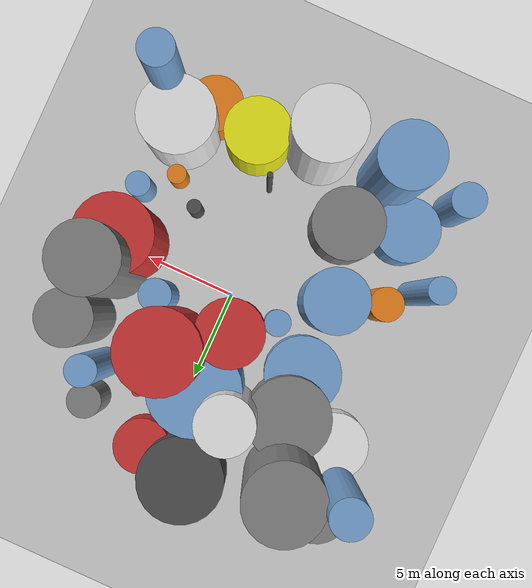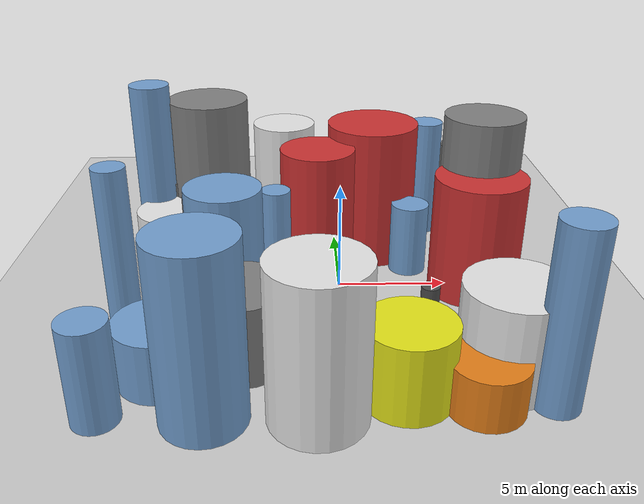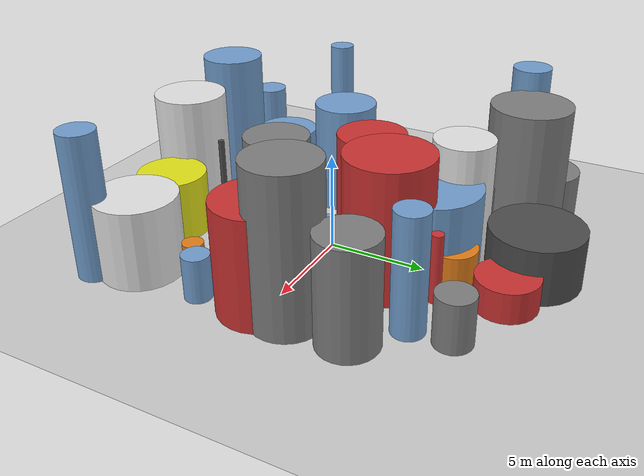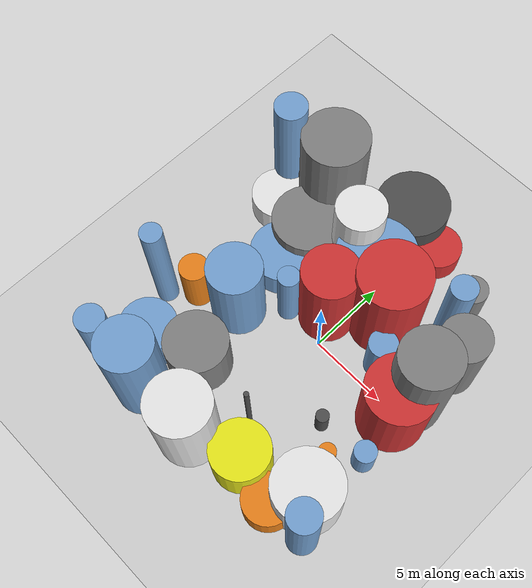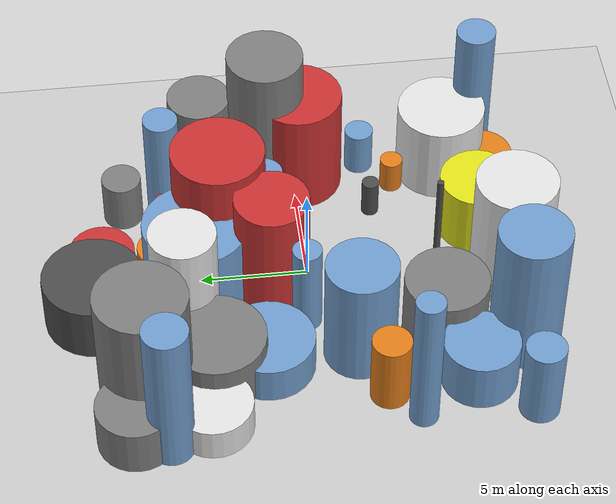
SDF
<?xml version='1.0'?>
<sdf version='1.6'>
  <world name='default'>
    <!-- Sun light -->
    <light name='sun' type='directional'>
      <cast_shadows>1</cast_shadows>
      <pose>0 0 10 0 0 0</pose>
      <diffuse>0.8 0.8 0.8 1</diffuse>
      <specular>0.2 0.2 0.2 1</specular>
      <attenuation>
        <range>1000</range>
        <constant>0.9</constant>
        <linear>0.01</linear>
        <quadratic>0.001</quadratic>
      </attenuation>
      <direction>-0.5 0.1 -0.9</direction>
    </light>

    <!-- Ground plane -->
    <model name='ground_plane'>
      <static>1</static>
      <link name='link'>
        <collision name='collision'>
          <geometry>
            <plane>
              <normal>0 0 1</normal>
              <size>100 100</size>
            </plane>
          </geometry>
          <surface>
            <contact>
              <collide_bitmask>65535</collide_bitmask>
              <ode/>
            </contact>
            <friction>
              <ode>
                <mu>100</mu>
                <mu2>50</mu2>
              </ode>
              <torsional><ode/></torsional>
            </friction>
            <bounce/>
          </surface>
          <max_contacts>10</max_contacts>
        </collision>
        <visual name='visual'>
          <cast_shadows>0</cast_shadows>
          <geometry>
            <plane>
              <normal>0 0 1</normal>
              <size>100 100</size>
            </plane>
          </geometry>
          <material>
            <script>
              <uri>file://media/materials/scripts/gazebo.material</uri>
              <n>Gazebo/Grey</n>
            </script>
          </material>
        </visual>
      </link>
    </model>

    <!-- Environment -->
    <magnetic_field>6e-06 2.3e-05 -4.2e-05</magnetic_field>
    <atmosphere type='adiabatic'/>
    <physics name='default_physics' default='0' type='ode'>
      <gravity>0 0 -9.8</gravity>
      <max_step_size>0.004</max_step_size>
      <real_time_factor>1</real_time_factor>
      <real_time_update_rate>250</real_time_update_rate>
    </physics>
    <scene>
      <ambient>0.4 0.4 0.4 1</ambient>
      <background>0.7 0.7 0.7 1</background>
      <shadows>1</shadows>
    </scene>
    <wind/>
    <spherical_coordinates>
      <surface_model>EARTH_WGS84</surface_model>
      <latitude_deg>0</latitude_deg>
      <longitude_deg>0</longitude_deg>
      <elevation>0</elevation>
      <heading_deg>0</heading_deg>
    </spherical_coordinates>

    <!-- ============ OBSTACLES (37) ============ -->
    <model name='obs_00'>
      <static>1</static>
      <link name='link'>
        <visual name='visual'>
          <geometry>
            <cylinder>
              <radius>2.3043</radius>
              <length>2.6908</length>
            </cylinder>
          </geometry>
          <material>
            <script>
              <n>Gazebo/Grey</n>
              <uri>file://media/materials/scripts/gazebo.material</uri>
            </script>
            <ambient>0.5 0.5 0.5 1</ambient>
          </material>
        </visual>
        <collision name='collision'>
          <geometry>
            <cylinder>
              <radius>2.3043</radius>
              <length>2.6908</length>
            </cylinder>
          </geometry>
          <max_contacts>10</max_contacts>
          <surface>
            <contact><ode/></contact>
            <bounce/>
            <friction>
              <ode><mu>1</mu><mu2>1</mu2></ode>
              <torsional><ode/></torsional>
            </friction>
          </surface>
        </collision>
      </link>
      <pose>-5.5978 4.7179 1.3454 0 0 3.0204</pose>
    </model>

    <model name='obs_01'>
      <static>1</static>
      <link name='link'>
        <visual name='visual'>
          <geometry>
            <cylinder>
              <radius>1.4904</radius>
              <length>5.4169</length>
            </cylinder>
          </geometry>
          <material>
            <script>
              <n>Gazebo/Grey</n>
              <uri>file://media/materials/scripts/gazebo.material</uri>
            </script>
            <ambient>0.5 0.5 0.5 1</ambient>
          </material>
        </visual>
        <collision name='collision'>
          <geometry>
            <cylinder>
              <radius>1.4904</radius>
              <length>5.4169</length>
            </cylinder>
          </geometry>
          <max_contacts>10</max_contacts>
          <surface>
            <contact><ode/></contact>
            <bounce/>
            <friction>
              <ode><mu>1</mu><mu2>1</mu2></ode>
              <torsional><ode/></torsional>
            </friction>
          </surface>
        </collision>
      </link>
      <pose>6.7579 4.3876 2.7084 0 0 1.8542</pose>
    </model>

    <model name='obs_02'>
      <static>1</static>
      <link name='link'>
        <visual name='visual'>
          <geometry>
            <cylinder>
              <radius>2.4625</radius>
              <length>4.4323</length>
            </cylinder>
          </geometry>
          <material>
            <script>
              <n>Gazebo/Blue</n>
              <uri>file://media/materials/scripts/gazebo.material</uri>
            </script>
            <ambient>0.447 0.624 0.812 1</ambient>
          </material>
        </visual>
        <collision name='collision'>
          <geometry>
            <cylinder>
              <radius>2.4625</radius>
              <length>4.4323</length>
            </cylinder>
          </geometry>
          <max_contacts>10</max_contacts>
          <surface>
            <contact><ode/></contact>
            <bounce/>
            <friction>
              <ode><mu>1</mu><mu2>1</mu2></ode>
              <torsional><ode/></torsional>
            </friction>
          </surface>
        </collision>
      </link>
      <pose>-0.4708 5.1445 2.2162 0 0 1.4861</pose>
    </model>

    <model name='obs_03'>
      <static>1</static>
      <link name='link'>
        <visual name='visual'>
          <geometry>
            <cylinder>
              <radius>0.9060</radius>
              <length>3.6241</length>
            </cylinder>
          </geometry>
          <material>
            <script>
              <n>Gazebo/Orange</n>
              <uri>file://media/materials/scripts/gazebo.material</uri>
            </script>
            <ambient>0.9 0.5 0.1 1</ambient>
          </material>
        </visual>
        <collision name='collision'>
          <geometry>
            <cylinder>
              <radius>0.9060</radius>
              <length>3.6241</length>
            </cylinder>
          </geometry>
          <max_contacts>10</max_contacts>
          <surface>
            <contact><ode/></contact>
            <bounce/>
            <friction>
              <ode><mu>1</mu><mu2>1</mu2></ode>
              <torsional><ode/></torsional>
            </friction>
          </surface>
        </collision>
      </link>
      <pose>-7.6494 -2.8553 1.8120 0 0 2.4131</pose>
    </model>

    <model name='obs_04'>
      <static>1</static>
      <link name='link'>
        <visual name='visual'>
          <geometry>
            <cylinder>
              <radius>0.9299</radius>
              <length>2.5090</length>
            </cylinder>
          </geometry>
          <material>
            <script>
              <n>Gazebo/Grey</n>
              <uri>file://media/materials/scripts/gazebo.material</uri>
            </script>
            <ambient>0.5 0.5 0.5 1</ambient>
          </material>
        </visual>
        <collision name='collision'>
          <geometry>
            <cylinder>
              <radius>0.9299</radius>
              <length>2.5090</length>
            </cylinder>
          </geometry>
          <max_contacts>10</max_contacts>
          <surface>
            <contact><ode/></contact>
            <bounce/>
            <friction>
              <ode><mu>1</mu><mu2>1</mu2></ode>
              <torsional><ode/></torsional>
            </friction>
          </surface>
        </collision>
      </link>
      <pose>4.6605 8.3240 1.2545 0 0 2.3497</pose>
    </model>

    <model name='obs_05'>
      <static>1</static>
      <link name='link'>
        <visual name='visual'>
          <geometry>
            <cylinder>
              <radius>1.9484</radius>
              <length>3.4220</length>
            </cylinder>
          </geometry>
          <material>
            <script>
              <n>Gazebo/Grey</n>
              <uri>file://media/materials/scripts/gazebo.material</uri>
            </script>
            <ambient>0.5 0.5 0.5 1</ambient>
          </material>
        </visual>
        <collision name='collision'>
          <geometry>
            <cylinder>
              <radius>1.9484</radius>
              <length>3.4220</length>
            </cylinder>
          </geometry>
          <max_contacts>10</max_contacts>
          <surface>
            <contact><ode/></contact>
            <bounce/>
            <friction>
              <ode><mu>1</mu><mu2>1</mu2></ode>
              <torsional><ode/></torsional>
            </friction>
          </surface>
        </collision>
      </link>
      <pose>-4.1667 -5.8646 1.7110 0 0 1.3902</pose>
    </model>

    <model name='obs_06'>
      <static>1</static>
      <link name='link'>
        <visual name='visual'>
          <geometry>
            <cylinder>
              <radius>1.1627</radius>
              <length>2.0354</length>
            </cylinder>
          </geometry>
          <material>
            <script>
              <n>Gazebo/Orange</n>
              <uri>file://media/materials/scripts/gazebo.material</uri>
            </script>
            <ambient>0.9 0.5 0.1 1</ambient>
          </material>
        </visual>
        <collision name='collision'>
          <geometry>
            <cylinder>
              <radius>1.1627</radius>
              <length>2.0354</length>
            </cylinder>
          </geometry>
          <max_contacts>10</max_contacts>
          <surface>
            <contact><ode/></contact>
            <bounce/>
            <friction>
              <ode><mu>1</mu><mu2>1</mu2></ode>
              <torsional><ode/></torsional>
            </friction>
          </surface>
        </collision>
      </link>
      <pose>0.4775 6.6989 1.0177 0 0 1.8329</pose>
    </model>

    <model name='obs_07'>
      <static>1</static>
      <link name='link'>
        <visual name='visual'>
          <geometry>
            <cylinder>
              <radius>0.1558</radius>
              <length>4.8059</length>
            </cylinder>
          </geometry>
          <material>
            <script>
              <n>Gazebo/DarkGrey</n>
              <uri>file://media/materials/scripts/gazebo.material</uri>
            </script>
            <ambient>0.3 0.3 0.3 1</ambient>
          </material>
        </visual>
        <collision name='collision'>
          <geometry>
            <cylinder>
              <radius>0.1558</radius>
              <length>4.8059</length>
            </cylinder>
          </geometry>
          <max_contacts>10</max_contacts>
          <surface>
            <contact><ode/></contact>
            <bounce/>
            <friction>
              <ode><mu>1</mu><mu2>1</mu2></ode>
              <torsional><ode/></torsional>
            </friction>
          </surface>
        </collision>
      </link>
      <pose>0.4912 -6.2284 2.4030 0 0 0.6487</pose>
    </model>

    <model name='obs_08'>
      <static>1</static>
      <link name='link'>
        <visual name='visual'>
          <geometry>
            <cylinder>
              <radius>1.6672</radius>
              <length>7.3248</length>
            </cylinder>
          </geometry>
          <material>
            <script>
              <n>Gazebo/Blue</n>
              <uri>file://media/materials/scripts/gazebo.material</uri>
            </script>
            <ambient>0.447 0.624 0.812 1</ambient>
          </material>
        </visual>
        <collision name='collision'>
          <geometry>
            <cylinder>
              <radius>1.6672</radius>
              <length>7.3248</length>
            </cylinder>
          </geometry>
          <max_contacts>10</max_contacts>
          <surface>
            <contact><ode/></contact>
            <bounce/>
            <friction>
              <ode><mu>1</mu><mu2>1</mu2></ode>
              <torsional><ode/></torsional>
            </friction>
          </surface>
        </collision>
      </link>
      <pose>-5.3052 -9.3620 3.6624 0 0 1.0374</pose>
    </model>

    <model name='obs_09'>
      <static>1</static>
      <link name='link'>
        <visual name='visual'>
          <geometry>
            <cylinder>
              <radius>1.7502</radius>
              <length>2.5533</length>
            </cylinder>
          </geometry>
          <material>
            <script>
              <n>Gazebo/Blue</n>
              <uri>file://media/materials/scripts/gazebo.material</uri>
            </script>
            <ambient>0.447 0.624 0.812 1</ambient>
          </material>
        </visual>
        <collision name='collision'>
          <geometry>
            <cylinder>
              <radius>1.7502</radius>
              <length>2.5533</length>
            </cylinder>
          </geometry>
          <max_contacts>10</max_contacts>
          <surface>
            <contact><ode/></contact>
            <bounce/>
            <friction>
              <ode><mu>1</mu><mu2>1</mu2></ode>
              <torsional><ode/></torsional>
            </friction>
          </surface>
        </collision>
      </link>
      <pose>-7.2080 -6.9713 1.2766 0 0 0.2118</pose>
    </model>

    <model name='obs_10'>
      <static>1</static>
      <link name='link'>
        <visual name='visual'>
          <geometry>
            <cylinder>
              <radius>1.7349</radius>
              <length>6.2129</length>
            </cylinder>
          </geometry>
          <material>
            <script>
              <n>Gazebo/Red</n>
              <uri>file://media/materials/scripts/gazebo.material</uri>
            </script>
            <ambient>0.8 0.2 0.2 1</ambient>
          </material>
        </visual>
        <collision name='collision'>
          <geometry>
            <cylinder>
              <radius>1.7349</radius>
              <length>6.2129</length>
            </cylinder>
          </geometry>
          <max_contacts>10</max_contacts>
          <surface>
            <contact><ode/></contact>
            <bounce/>
            <friction>
              <ode><mu>1</mu><mu2>1</mu2></ode>
              <torsional><ode/></torsional>
            </friction>
          </surface>
        </collision>
      </link>
      <pose>-0.9813 1.7102 3.1064 0 0 2.0448</pose>
    </model>

    <model name='obs_11'>
      <static>1</static>
      <link name='link'>
        <visual name='visual'>
          <geometry>
            <cylinder>
              <radius>0.4049</radius>
              <length>1.8794</length>
            </cylinder>
          </geometry>
          <material>
            <script>
              <n>Gazebo/DarkGrey</n>
              <uri>file://media/materials/scripts/gazebo.material</uri>
            </script>
            <ambient>0.3 0.3 0.3 1</ambient>
          </material>
        </visual>
        <collision name='collision'>
          <geometry>
            <cylinder>
              <radius>0.4049</radius>
              <length>1.8794</length>
            </cylinder>
          </geometry>
          <max_contacts>10</max_contacts>
          <surface>
            <contact><ode/></contact>
            <bounce/>
            <friction>
              <ode><mu>1</mu><mu2>1</mu2></ode>
              <torsional><ode/></torsional>
            </friction>
          </surface>
        </collision>
      </link>
      <pose>3.6867 -3.4781 0.9397 0 0 0.8149</pose>
    </model>

    <model name='obs_12'>
      <static>1</static>
      <link name='link'>
        <visual name='visual'>
          <geometry>
            <cylinder>
              <radius>2.1042</radius>
              <length>6.8546</length>
            </cylinder>
          </geometry>
          <material>
            <script>
              <n>Gazebo/Grey</n>
              <uri>file://media/materials/scripts/gazebo.material</uri>
            </script>
            <ambient>0.5 0.5 0.5 1</ambient>
          </material>
        </visual>
        <collision name='collision'>
          <geometry>
            <cylinder>
              <radius>2.1042</radius>
              <length>6.8546</length>
            </cylinder>
          </geometry>
          <max_contacts>10</max_contacts>
          <surface>
            <contact><ode/></contact>
            <bounce/>
            <friction>
              <ode><mu>1</mu><mu2>1</mu2></ode>
              <torsional><ode/></torsional>
            </friction>
          </surface>
        </collision>
      </link>
      <pose>-6.6654 7.9219 3.4273 0 0 2.6758</pose>
    </model>

    <model name='obs_13'>
      <static>1</static>
      <link name='link'>
        <visual name='visual'>
          <geometry>
            <cylinder>
              <radius>0.9241</radius>
              <length>4.1385</length>
            </cylinder>
          </geometry>
          <material>
            <script>
              <n>Gazebo/Blue</n>
              <uri>file://media/materials/scripts/gazebo.material</uri>
            </script>
            <ambient>0.447 0.624 0.812 1</ambient>
          </material>
        </visual>
        <collision name='collision'>
          <geometry>
            <cylinder>
              <radius>0.9241</radius>
              <length>4.1385</length>
            </cylinder>
          </geometry>
          <max_contacts>10</max_contacts>
          <surface>
            <contact><ode/></contact>
            <bounce/>
            <friction>
              <ode><mu>1</mu><mu2>1</mu2></ode>
              <torsional><ode/></torsional>
            </friction>
          </surface>
        </collision>
      </link>
      <pose>-9.1761 -9.3491 2.0693 0 0 0.4975</pose>
    </model>

    <model name='obs_14'>
      <static>1</static>
      <link name='link'>
        <visual name='visual'>
          <geometry>
            <cylinder>
              <radius>1.6680</radius>
              <length>5.7977</length>
            </cylinder>
          </geometry>
          <material>
            <script>
              <n>Gazebo/Blue</n>
              <uri>file://media/materials/scripts/gazebo.material</uri>
            </script>
            <ambient>0.447 0.624 0.812 1</ambient>
          </material>
        </visual>
        <collision name='collision'>
          <geometry>
            <cylinder>
              <radius>1.6680</radius>
              <length>5.7977</length>
            </cylinder>
          </geometry>
          <max_contacts>10</max_contacts>
          <surface>
            <contact><ode/></contact>
            <bounce/>
            <friction>
              <ode><mu>1</mu><mu2>1</mu2></ode>
              <torsional><ode/></torsional>
            </friction>
          </surface>
        </collision>
      </link>
      <pose>-5.0574 -1.8479 2.8988 0 0 2.0947</pose>
    </model>

    <model name='obs_15'>
      <static>1</static>
      <link name='link'>
        <visual name='visual'>
          <geometry>
            <cylinder>
              <radius>0.6793</radius>
              <length>2.2714</length>
            </cylinder>
          </geometry>
          <material>
            <script>
              <n>Gazebo/Blue</n>
              <uri>file://media/materials/scripts/gazebo.material</uri>
            </script>
            <ambient>0.447 0.624 0.812 1</ambient>
          </material>
        </visual>
        <collision name='collision'>
          <geometry>
            <cylinder>
              <radius>0.6793</radius>
              <length>2.2714</length>
            </cylinder>
          </geometry>
          <max_contacts>10</max_contacts>
          <surface>
            <contact><ode/></contact>
            <bounce/>
            <friction>
              <ode><mu>1</mu><mu2>1</mu2></ode>
              <torsional><ode/></torsional>
            </friction>
          </surface>
        </collision>
      </link>
      <pose>6.8599 -3.3281 1.1357 0 0 2.3274</pose>
    </model>

    <model name='obs_16'>
      <static>1</static>
      <link name='link'>
        <visual name='visual'>
          <geometry>
            <cylinder>
              <radius>1.9027</radius>
              <length>6.3708</length>
            </cylinder>
          </geometry>
          <material>
            <script>
              <n>Gazebo/White</n>
              <uri>file://media/materials/scripts/gazebo.material</uri>
            </script>
            <ambient>0.9 0.9 0.9 1</ambient>
          </material>
        </visual>
        <collision name='collision'>
          <geometry>
            <cylinder>
              <radius>1.9027</radius>
              <length>6.3708</length>
            </cylinder>
          </geometry>
          <max_contacts>10</max_contacts>
          <surface>
            <contact><ode/></contact>
            <bounce/>
            <friction>
              <ode><mu>1</mu><mu2>1</mu2></ode>
              <torsional><ode/></torsional>
            </friction>
          </surface>
        </collision>
      </link>
      <pose>-1.2281 -9.3818 3.1854 0 0 2.0119</pose>
    </model>

    <model name='obs_17'>
      <static>1</static>
      <link name='link'>
        <visual name='visual'>
          <geometry>
            <cylinder>
              <radius>1.5334</radius>
              <length>1.5770</length>
            </cylinder>
          </geometry>
          <material>
            <script>
              <n>Gazebo/Red</n>
              <uri>file://media/materials/scripts/gazebo.material</uri>
            </script>
            <ambient>0.8 0.2 0.2 1</ambient>
          </material>
        </visual>
        <collision name='collision'>
          <geometry>
            <cylinder>
              <radius>1.5334</radius>
              <length>1.5770</length>
            </cylinder>
          </geometry>
          <max_contacts>10</max_contacts>
          <surface>
            <contact><ode/></contact>
            <bounce/>
            <friction>
              <ode><mu>1</mu><mu2>1</mu2></ode>
              <torsional><ode/></torsional>
            </friction>
          </surface>
        </collision>
      </link>
      <pose>0.9928 9.4829 0.7885 0 0 1.1989</pose>
    </model>

    <model name='obs_18'>
      <static>1</static>
      <link name='link'>
        <visual name='visual'>
          <geometry>
            <cylinder>
              <radius>0.5348</radius>
              <length>1.6739</length>
            </cylinder>
          </geometry>
          <material>
            <script>
              <n>Gazebo/Orange</n>
              <uri>file://media/materials/scripts/gazebo.material</uri>
            </script>
            <ambient>0.9 0.5 0.1 1</ambient>
          </material>
        </visual>
        <collision name='collision'>
          <geometry>
            <cylinder>
              <radius>0.5348</radius>
              <length>1.6739</length>
            </cylinder>
          </geometry>
          <max_contacts>10</max_contacts>
          <surface>
            <contact><ode/></contact>
            <bounce/>
            <friction>
              <ode><mu>1</mu><mu2>1</mu2></ode>
              <torsional><ode/></torsional>
            </friction>
          </surface>
        </collision>
      </link>
      <pose>5.2949 -4.7150 0.8370 0 0 2.1712</pose>
    </model>

    <model name='obs_19'>
      <static>1</static>
      <link name='link'>
        <visual name='visual'>
          <geometry>
            <cylinder>
              <radius>2.1808</radius>
              <length>6.7526</length>
            </cylinder>
          </geometry>
          <material>
            <script>
              <n>Gazebo/Red</n>
              <uri>file://media/materials/scripts/gazebo.material</uri>
            </script>
            <ambient>0.8 0.2 0.2 1</ambient>
          </material>
        </visual>
        <collision name='collision'>
          <geometry>
            <cylinder>
              <radius>2.1808</radius>
              <length>6.7526</length>
            </cylinder>
          </geometry>
          <max_contacts>10</max_contacts>
          <surface>
            <contact><ode/></contact>
            <bounce/>
            <friction>
              <ode><mu>1</mu><mu2>1</mu2></ode>
              <torsional><ode/></torsional>
            </friction>
          </surface>
        </collision>
      </link>
      <pose>1.7565 3.8903 3.3763 0 0 0.8678</pose>
    </model>

    <model name='obs_20'>
      <static>1</static>
      <link name='link'>
        <visual name='visual'>
          <geometry>
            <cylinder>
              <radius>1.5494</radius>
              <length>6.1553</length>
            </cylinder>
          </geometry>
          <material>
            <script>
              <n>Gazebo/White</n>
              <uri>file://media/materials/scripts/gazebo.material</uri>
            </script>
            <ambient>0.9 0.9 0.9 1</ambient>
          </material>
        </visual>
        <collision name='collision'>
          <geometry>
            <cylinder>
              <radius>1.5494</radius>
              <length>6.1553</length>
            </cylinder>
          </geometry>
          <max_contacts>10</max_contacts>
          <surface>
            <contact><ode/></contact>
            <bounce/>
            <friction>
              <ode><mu>1</mu><mu2>1</mu2></ode>
              <torsional><ode/></torsional>
            </friction>
          </surface>
        </collision>
      </link>
      <pose>-2.5880 5.8563 3.0777 0 0 3.0243</pose>
    </model>

    <model name='obs_21'>
      <static>1</static>
      <link name='link'>
        <visual name='visual'>
          <geometry>
            <cylinder>
              <radius>1.0269</radius>
              <length>7.8560</length>
            </cylinder>
          </geometry>
          <material>
            <script>
              <n>Gazebo/Blue</n>
              <uri>file://media/materials/scripts/gazebo.material</uri>
            </script>
            <ambient>0.447 0.624 0.812 1</ambient>
          </material>
        </visual>
        <collision name='collision'>
          <geometry>
            <cylinder>
              <radius>1.0269</radius>
              <length>7.8560</length>
            </cylinder>
          </geometry>
          <max_contacts>10</max_contacts>
          <surface>
            <contact><ode/></contact>
            <bounce/>
            <friction>
              <ode><mu>1</mu><mu2>1</mu2></ode>
              <torsional><ode/></torsional>
            </friction>
          </surface>
        </collision>
      </link>
      <pose>-9.5354 7.0363 3.9280 0 0 1.9164</pose>
    </model>

    <model name='obs_22'>
      <static>1</static>
      <link name='link'>
        <visual name='visual'>
          <geometry>
            <cylinder>
              <radius>1.8068</radius>
              <length>7.9156</length>
            </cylinder>
          </geometry>
          <material>
            <script>
              <n>Gazebo/Grey</n>
              <uri>file://media/materials/scripts/gazebo.material</uri>
            </script>
            <ambient>0.5 0.5 0.5 1</ambient>
          </material>
        </visual>
        <collision name='collision'>
          <geometry>
            <cylinder>
              <radius>1.8068</radius>
              <length>7.9156</length>
            </cylinder>
          </geometry>
          <max_contacts>10</max_contacts>
          <surface>
            <contact><ode/></contact>
            <bounce/>
            <friction>
              <ode><mu>1</mu><mu2>1</mu2></ode>
              <torsional><ode/></torsional>
            </friction>
          </surface>
        </collision>
      </link>
      <pose>6.4970 1.2391 3.9578 0 0 1.2639</pose>
    </model>

    <model name='obs_23'>
      <static>1</static>
      <link name='link'>
        <visual name='visual'>
          <geometry>
            <cylinder>
              <radius>2.0704</radius>
              <length>5.5708</length>
            </cylinder>
          </geometry>
          <material>
            <script>
              <n>Gazebo/Red</n>
              <uri>file://media/materials/scripts/gazebo.material</uri>
            </script>
            <ambient>0.8 0.2 0.2 1</ambient>
          </material>
        </visual>
        <collision name='collision'>
          <geometry>
            <cylinder>
              <radius>2.0704</radius>
              <length>5.5708</length>
            </cylinder>
          </geometry>
          <max_contacts>10</max_contacts>
          <surface>
            <contact><ode/></contact>
            <bounce/>
            <friction>
              <ode><mu>1</mu><mu2>1</mu2></ode>
              <torsional><ode/></torsional>
            </friction>
          </surface>
        </collision>
      </link>
      <pose>6.2364 -0.3071 2.7854 0 0 2.2212</pose>
    </model>

    <model name='obs_24'>
      <static>1</static>
      <link name='link'>
        <visual name='visual'>
          <geometry>
            <cylinder>
              <radius>0.8193</radius>
              <length>6.0189</length>
            </cylinder>
          </geometry>
          <material>
            <script>
              <n>Gazebo/Blue</n>
              <uri>file://media/materials/scripts/gazebo.material</uri>
            </script>
            <ambient>0.447 0.624 0.812 1</ambient>
          </material>
        </visual>
        <collision name='collision'>
          <geometry>
            <cylinder>
              <radius>0.8193</radius>
              <length>6.0189</length>
            </cylinder>
          </geometry>
          <max_contacts>10</max_contacts>
          <surface>
            <contact><ode/></contact>
            <bounce/>
            <friction>
              <ode><mu>1</mu><mu2>1</mu2></ode>
              <torsional><ode/></torsional>
            </friction>
          </surface>
        </collision>
      </link>
      <pose>4.8051 6.3038 3.0094 0 0 0.7654</pose>
    </model>

    <model name='obs_25'>
      <static>1</static>
      <link name='link'>
        <visual name='visual'>
          <geometry>
            <cylinder>
              <radius>0.6771</radius>
              <length>4.7508</length>
            </cylinder>
          </geometry>
          <material>
            <script>
              <n>Gazebo/Blue</n>
              <uri>file://media/materials/scripts/gazebo.material</uri>
            </script>
            <ambient>0.447 0.624 0.812 1</ambient>
          </material>
        </visual>
        <collision name='collision'>
          <geometry>
            <cylinder>
              <radius>0.6771</radius>
              <length>4.7508</length>
            </cylinder>
          </geometry>
          <max_contacts>10</max_contacts>
          <surface>
            <contact><ode/></contact>
            <bounce/>
            <friction>
              <ode><mu>1</mu><mu2>1</mu2></ode>
              <torsional><ode/></torsional>
            </friction>
          </surface>
        </collision>
      </link>
      <pose>-2.9098 0.3252 2.3754 0 0 0.8621</pose>
    </model>

    <model name='obs_26'>
      <static>1</static>
      <link name='link'>
        <visual name='visual'>
          <geometry>
            <cylinder>
              <radius>0.8804</radius>
              <length>3.4431</length>
            </cylinder>
          </geometry>
          <material>
            <script>
              <n>Gazebo/Blue</n>
              <uri>file://media/materials/scripts/gazebo.material</uri>
            </script>
            <ambient>0.447 0.624 0.812 1</ambient>
          </material>
        </visual>
        <collision name='collision'>
          <geometry>
            <cylinder>
              <radius>0.8804</radius>
              <length>3.4431</length>
            </cylinder>
          </geometry>
          <max_contacts>10</max_contacts>
          <surface>
            <contact><ode/></contact>
            <bounce/>
            <friction>
              <ode><mu>1</mu><mu2>1</mu2></ode>
              <torsional><ode/></torsional>
            </friction>
          </surface>
        </collision>
      </link>
      <pose>3.4296 1.6358 1.7215 0 0 1.7286</pose>
    </model>

    <model name='obs_27'>
      <static>1</static>
      <link name='link'>
        <visual name='visual'>
          <geometry>
            <cylinder>
              <radius>0.3002</radius>
              <length>3.5317</length>
            </cylinder>
          </geometry>
          <material>
            <script>
              <n>Gazebo/Red</n>
              <uri>file://media/materials/scripts/gazebo.material</uri>
            </script>
            <ambient>0.8 0.2 0.2 1</ambient>
          </material>
        </visual>
        <collision name='collision'>
          <geometry>
            <cylinder>
              <radius>0.3002</radius>
              <length>3.5317</length>
            </cylinder>
          </geometry>
          <max_contacts>10</max_contacts>
          <surface>
            <contact><ode/></contact>
            <bounce/>
            <friction>
              <ode><mu>1</mu><mu2>1</mu2></ode>
              <torsional><ode/></torsional>
            </friction>
          </surface>
        </collision>
      </link>
      <pose>2.1870 6.4907 1.7659 0 0 1.2732</pose>
    </model>

    <model name='obs_28'>
      <static>1</static>
      <link name='link'>
        <visual name='visual'>
          <geometry>
            <cylinder>
              <radius>0.9267</radius>
              <length>7.5252</length>
            </cylinder>
          </geometry>
          <material>
            <script>
              <n>Gazebo/Blue</n>
              <uri>file://media/materials/scripts/gazebo.material</uri>
            </script>
            <ambient>0.447 0.624 0.812 1</ambient>
          </material>
        </visual>
        <collision name='collision'>
          <geometry>
            <cylinder>
              <radius>0.9267</radius>
              <length>7.5252</length>
            </cylinder>
          </geometry>
          <max_contacts>10</max_contacts>
          <surface>
            <contact><ode/></contact>
            <bounce/>
            <friction>
              <ode><mu>1</mu><mu2>1</mu2></ode>
              <torsional><ode/></torsional>
            </friction>
          </surface>
        </collision>
      </link>
      <pose>7.5037 -8.9116 3.7626 0 0 0.7625</pose>
    </model>

    <model name='obs_29'>
      <static>1</static>
      <link name='link'>
        <visual name='visual'>
          <geometry>
            <cylinder>
              <radius>2.0842</radius>
              <length>4.0856</length>
            </cylinder>
          </geometry>
          <material>
            <script>
              <n>Gazebo/White</n>
              <uri>file://media/materials/scripts/gazebo.material</uri>
            </script>
            <ambient>0.9 0.9 0.9 1</ambient>
          </material>
        </visual>
        <collision name='collision'>
          <geometry>
            <cylinder>
              <radius>2.0842</radius>
              <length>4.0856</length>
            </cylinder>
          </geometry>
          <max_contacts>10</max_contacts>
          <surface>
            <contact><ode/></contact>
            <bounce/>
            <friction>
              <ode><mu>1</mu><mu2>1</mu2></ode>
              <torsional><ode/></torsional>
            </friction>
          </surface>
        </collision>
      </link>
      <pose>6.1631 -7.1907 2.0428 0 0 1.4149</pose>
    </model>

    <model name='obs_30'>
      <static>1</static>
      <link name='link'>
        <visual name='visual'>
          <geometry>
            <cylinder>
              <radius>2.3364</radius>
              <length>2.8428</length>
            </cylinder>
          </geometry>
          <material>
            <script>
              <n>Gazebo/DarkGrey</n>
              <uri>file://media/materials/scripts/gazebo.material</uri>
            </script>
            <ambient>0.3 0.3 0.3 1</ambient>
          </material>
        </visual>
        <collision name='collision'>
          <geometry>
            <cylinder>
              <radius>2.3364</radius>
              <length>2.8428</length>
            </cylinder>
          </geometry>
          <max_contacts>10</max_contacts>
          <surface>
            <contact><ode/></contact>
            <bounce/>
            <friction>
              <ode><mu>1</mu><mu2>1</mu2></ode>
              <torsional><ode/></torsional>
            </friction>
          </surface>
        </collision>
      </link>
      <pose>-1.7004 9.9766 1.4214 0 0 1.8771</pose>
    </model>

    <model name='obs_31'>
      <static>1</static>
      <link name='link'>
        <visual name='visual'>
          <geometry>
            <cylinder>
              <radius>1.7912</radius>
              <length>3.2573</length>
            </cylinder>
          </geometry>
          <material>
            <script>
              <n>Gazebo/Yellow</n>
              <uri>file://media/materials/scripts/gazebo.material</uri>
            </script>
            <ambient>0.9 0.9 0.1 1</ambient>
          </material>
        </visual>
        <collision name='collision'>
          <geometry>
            <cylinder>
              <radius>1.7912</radius>
              <length>3.2573</length>
            </cylinder>
          </geometry>
          <max_contacts>10</max_contacts>
          <surface>
            <contact><ode/></contact>
            <bounce/>
            <friction>
              <ode><mu>1</mu><mu2>1</mu2></ode>
              <torsional><ode/></torsional>
            </friction>
          </surface>
        </collision>
      </link>
      <pose>2.1107 -8.3314 1.6286 0 0 0.6204</pose>
    </model>

    <model name='obs_32'>
      <static>1</static>
      <link name='link'>
        <visual name='visual'>
          <geometry>
            <cylinder>
              <radius>1.8191</radius>
              <length>1.6793</length>
            </cylinder>
          </geometry>
          <material>
            <script>
              <n>Gazebo/White</n>
              <uri>file://media/materials/scripts/gazebo.material</uri>
            </script>
            <ambient>0.9 0.9 0.9 1</ambient>
          </material>
        </visual>
        <collision name='collision'>
          <geometry>
            <cylinder>
              <radius>1.8191</radius>
              <length>1.6793</length>
            </cylinder>
          </geometry>
          <max_contacts>10</max_contacts>
          <surface>
            <contact><ode/></contact>
            <bounce/>
            <friction>
              <ode><mu>1</mu><mu2>1</mu2></ode>
              <torsional><ode/></torsional>
            </friction>
          </surface>
        </collision>
      </link>
      <pose>-8.5469 5.1304 0.8396 0 0 0.6815</pose>
    </model>

    <model name='obs_33'>
      <static>1</static>
      <link name='link'>
        <visual name='visual'>
          <geometry>
            <cylinder>
              <radius>1.7803</radius>
              <length>2.4251</length>
            </cylinder>
          </geometry>
          <material>
            <script>
              <n>Gazebo/Grey</n>
              <uri>file://media/materials/scripts/gazebo.material</uri>
            </script>
            <ambient>0.5 0.5 0.5 1</ambient>
          </material>
        </visual>
        <collision name='collision'>
          <geometry>
            <cylinder>
              <radius>1.7803</radius>
              <length>2.4251</length>
            </cylinder>
          </geometry>
          <max_contacts>10</max_contacts>
          <surface>
            <contact><ode/></contact>
            <bounce/>
            <friction>
              <ode><mu>1</mu><mu2>1</mu2></ode>
              <torsional><ode/></torsional>
            </friction>
          </surface>
        </collision>
      </link>
      <pose>-8.9425 8.5233 1.2125 0 0 0.5164</pose>
    </model>

    <model name='obs_34'>
      <static>1</static>
      <link name='link'>
        <visual name='visual'>
          <geometry>
            <cylinder>
              <radius>2.1070</radius>
              <length>1.9033</length>
            </cylinder>
          </geometry>
          <material>
            <script>
              <n>Gazebo/Blue</n>
              <uri>file://media/materials/scripts/gazebo.material</uri>
            </script>
            <ambient>0.447 0.624 0.812 1</ambient>
          </material>
        </visual>
        <collision name='collision'>
          <geometry>
            <cylinder>
              <radius>2.1070</radius>
              <length>1.9033</length>
            </cylinder>
          </geometry>
          <max_contacts>10</max_contacts>
          <surface>
            <contact><ode/></contact>
            <bounce/>
            <friction>
              <ode><mu>1</mu><mu2>1</mu2></ode>
              <torsional><ode/></torsional>
            </friction>
          </surface>
        </collision>
      </link>
      <pose>-5.3523 2.3246 0.9516 0 0 3.1068</pose>
    </model>

    <model name='obs_35'>
      <static>1</static>
      <link name='link'>
        <visual name='visual'>
          <geometry>
            <cylinder>
              <radius>1.5183</radius>
              <length>2.0844</length>
            </cylinder>
          </geometry>
          <material>
            <script>
              <n>Gazebo/Orange</n>
              <uri>file://media/materials/scripts/gazebo.material</uri>
            </script>
            <ambient>0.9 0.5 0.1 1</ambient>
          </material>
        </visual>
        <collision name='collision'>
          <geometry>
            <cylinder>
              <radius>1.5183</radius>
              <length>2.0844</length>
            </cylinder>
          </geometry>
          <max_contacts>10</max_contacts>
          <surface>
            <contact><ode/></contact>
            <bounce/>
            <friction>
              <ode><mu>1</mu><mu2>1</mu2></ode>
              <torsional><ode/></torsional>
            </friction>
          </surface>
        </collision>
      </link>
      <pose>4.8935 -8.9616 1.0422 0 0 1.3501</pose>
    </model>

    <model name='obs_36'>
      <static>1</static>
      <link name='link'>
        <visual name='visual'>
          <geometry>
            <cylinder>
              <radius>0.6647</radius>
              <length>7.6315</length>
            </cylinder>
          </geometry>
          <material>
            <script>
              <n>Gazebo/Blue</n>
              <uri>file://media/materials/scripts/gazebo.material</uri>
            </script>
            <ambient>0.447 0.624 0.812 1</ambient>
          </material>
        </visual>
        <collision name='collision'>
          <geometry>
            <cylinder>
              <radius>0.6647</radius>
              <length>7.6315</length>
            </cylinder>
          </geometry>
          <max_contacts>10</max_contacts>
          <surface>
            <contact><ode/></contact>
            <bounce/>
            <friction>
              <ode><mu>1</mu><mu2>1</mu2></ode>
              <torsional><ode/></torsional>
            </friction>
          </surface>
        </collision>
      </link>
      <pose>-9.0580 -4.1706 3.8158 0 0 3.1403</pose>
    </model>

    <!-- GUI camera -->
    <gui fullscreen='0'>
      <camera name='user_camera'>
        <pose>-15 0 18 0 0.85 0.15</pose>
        <view_controller>orbit</view_controller>
        <projection_type>perspective</projection_type>
      </camera>
    </gui>
  </world>
</sdf>
